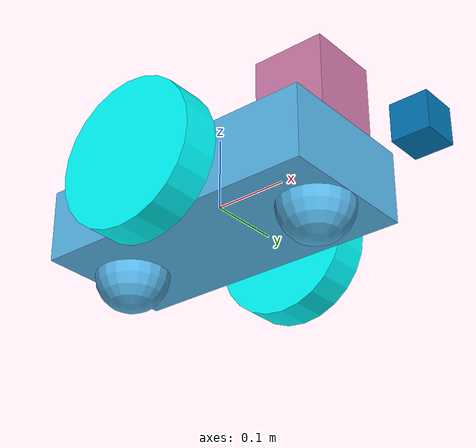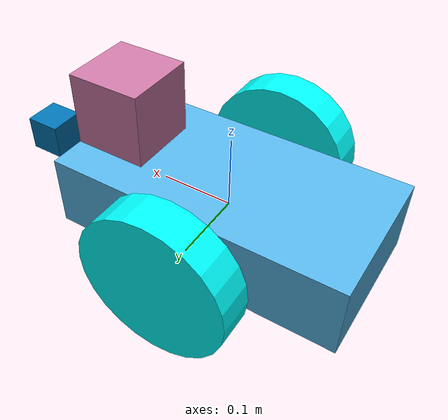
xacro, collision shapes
<?xml version='1.0'?>

<robot name="udacity_bot" xmlns:xacro="http://www.ros.org/wiki/xacro">

  <xacro:include filename="$(find slam_project)/urdf/udacity_bot.gazebo" />
  <xacro:property name="M_PI" value="3.1415926535897931" />
  <link name="robot_footprint"></link>

  <joint name="robot_footprint_joint" type="fixed">
    <origin xyz="0 0 0" rpy="0 0 0" />
    <parent link="robot_footprint"/>
    <child link="chassis" />
  </joint>

  <link name='chassis'>
    <pose>0 0 0.1 0 0 0</pose>

    <inertial>
      <mass value="15.0"/>
      <origin xyz="0.0 0 0" rpy=" 0 0 0"/>
      <inertia
          ixx="0.1" ixy="0" ixz="0"
          iyy="0.1" iyz="0"
          izz="0.1"
      />
    </inertial>

    <collision name='collision'>
      <origin xyz="0 0 0" rpy=" 0 0 0"/>
      <geometry>
        <box size=".4 .2 .1"/>
      </geometry>
    </collision>

    <visual name='chassis_visual'>
      <origin xyz="0 0 0" rpy=" 0 0 0"/>
      <geometry>
        <box size=".4 .2 .1"/>
      </geometry>
    </visual>

    <collision name='back_caster_collision'>
      <origin xyz="-0.15 0 -0.05" rpy=" 0 0 0"/>
      <geometry>
        <sphere radius="0.05"/>
      </geometry>
      <surface>
        <friction>
          <ode>
            <mu>0</mu>
            <mu2>0</mu2>
            <slip1>1.0</slip1>
            <slip2>1.0</slip2>
          </ode>
        </friction>
      </surface>
    </collision>

    <visual name='back_caster_visual'>
      <origin xyz="-0.15 0 -0.05" rpy=" 0 0 0"/>
      <geometry>
        <sphere radius="0.05"/>
      </geometry>
    </visual>

    <collision name='front_caster_collision'>
      <origin xyz="0.15 0 -0.05" rpy=" 0 0 0"/>
      <geometry>
        <sphere radius="0.05"/>
      </geometry>
      <surface>
        <friction>
          <ode>
            <mu>0</mu>
            <mu2>0</mu2>
            <slip1>1.0</slip1>
            <slip2>1.0</slip2>
          </ode>
        </friction>
      </surface>
    </collision>

    <visual name='front_caster_visual'>
      <origin xyz="0.15 0 -0.05" rpy=" 0 0 0"/>
      <geometry>
        <sphere radius="0.05"/>
      </geometry>
    </visual>

  </link>

 <!-- WHEELS -->
 <link name="right_wheel">
   <inertial>
     <origin xyz="0.0 0.0 0.0" rpy="0.0 1.5707 1.5707"/>
     <mass value="5"/>
      <inertia
          ixx="0.1" ixy="0" ixz="0"
          iyy="0.1" iyz="0"
          izz="0.1"
      />
    </inertial>

   <visual>
     <origin xyz="0.0 0.0 0.0" rpy="0.0 1.5707 1.5707"/>
     <geometry>
       <cylinder radius="0.1" length="0.05"/>
     </geometry>
     <material name="Cyan">
       <color rgba="0 1.0 1.0 1.0"/>
     </material>
   </visual>

   <collision>
     <origin xyz="0.0 0.0 0.0" rpy="0.0 1.5707 1.5707"/>
     <geometry>
       <cylinder radius="0.1" length="0.05"/>
     </geometry>
   </collision>
 </link>

 <link name="left_wheel">
   <inertial>
     <origin xyz="0.0 0.0 0.0" rpy="0.0 1.5707 1.5707"/>
     <mass value="5"/>
      <inertia
          ixx="0.1" ixy="0" ixz="0"
          iyy="0.1" iyz="0"
          izz="0.1"
      />
    </inertial>

   <visual>
     <origin xyz="0.0 0.0 0.0" rpy="0.0 1.5707 1.5707"/>
     <geometry>
       <cylinder radius="0.1" length="0.05"/>
     </geometry>
     <material name="Cyan">
       <color rgba="0 1.0 1.0 1.0"/>
     </material>
   </visual>

   <collision>
     <origin xyz="0.0 0.0 0.0" rpy="0.0 1.5707 1.5707"/>
     <geometry>
       <cylinder radius="0.1" length="0.05"/>
     </geometry>
   </collision>
 </link>

  <joint type="continuous" name="left_wheel_hinge">
    <origin xyz="0 0.15 0" rpy="0 0 0"/>
    <child link="left_wheel"/>
    <parent link="chassis"/>
    <axis xyz="0 1 0" rpy="0 0 0"/>
    <limit effort="10000" velocity="1000"/>
    <joint_properties damping="1.0" friction="1.0"/>
  </joint>

  <joint type="continuous" name="right_wheel_hinge">
    <origin xyz="0 -0.15 0" rpy="0 0 0"/>
    <child link="right_wheel"/>
    <parent link="chassis"/>
    <axis xyz="0 1 0" rpy="0 0 0"/>
    <limit effort="10000" velocity="1000"/>
    <joint_properties damping="1.0" friction="1.0"/>
  </joint>

<!--CAMERA-->
<link name="camera">
 <inertial>
   <origin xyz="0.0 0.0 0.0" rpy="0.0 0.0 0.0"/>
   <mass value="0.1"/>
    <inertia ixx="1e-6" ixy="0" ixz="0" iyy="1e-6" iyz="0" izz="1e-6"/>
  </inertial>

 <visual>
   <origin xyz="0.0 0.0 0.0" rpy="0.0 0.0 0.0"/>
   <geometry>
   		<mesh filename="package://slam_project/meshes/kinect.dae"/>
   </geometry>
 </visual>

 <collision>
   <origin xyz="0.0 0.0 0.0" rpy="0.0 0.0 0.0"/>
   <geometry>
     <box size=".05 .05 .05"/>
   </geometry>
 </collision>
</link>

<joint type="fixed" name="camera_joint">
  <origin xyz="0.3 0.0 0.0" rpy="0 0 0"/>
  <child link="camera"/>
  <parent link="chassis"/>
  <axis xyz="0 1 0" rpy="0 0 0"/>
  <limit effort="10000" velocity="1000"/>
  <joint_properties damping="1.0" friction="1.0"/>
</joint>

<!-- RGBD camera -->
<link name="rgbd_camera">
 <inertial>
   <origin xyz="0.0 0.0 0.0" rpy="0.0 0.0 0.0"/>
   <mass value="0.0"/>
   <inertia ixx="1e-6" ixy="0" ixz="0" iyy="1e-6" iyz="0" izz="1e-6"/>
  </inertial>
</link>

<joint type="fixed" name="rgbd_joint">
  <origin xyz="0.0 0.0 0.0" rpy="${-M_PI/2} 0 ${-M_PI/2}"/>
  <child link="rgbd_camera"/>
  <parent link="camera"/>
</joint>

<!--LASER-->
<link name="hokuyo">
   <inertial>
     <origin xyz="0.0 0.0 0.0" rpy="0.0 0.0 0.0"/>
     <mass value="0.1"/>
      <inertia ixx="1e-6" ixy="0" ixz="0" iyy="1e-6" iyz="0" izz="1e-6"/>
    </inertial>

   <visual>
     <origin xyz="0.0 0.0 0.0" rpy="0.0 0.0 0.0"/>
     <geometry>
	   <mesh filename="package://slam_project/meshes/hokuyo.dae"/>
     </geometry>

   </visual>

   <collision>
     <origin xyz="0.0 0.0 0.0" rpy="0.0 0.0 0.0"/>
     <geometry>
       <box size="0.1 .1 .1"/>
     </geometry>
   </collision>
 </link>

  <joint type="fixed" name="hokuyo_joint">
    <origin xyz=".15 0 .1" rpy="0 0 0"/>
    <child link="hokuyo"/>
    <parent link="chassis"/>
    <axis xyz="0 1 0" rpy="0 0 0"/>
    <limit effort="10000" velocity="1000"/>
    <joint_properties damping="1.0" friction="1.0"/>
  </joint>

</robot>
